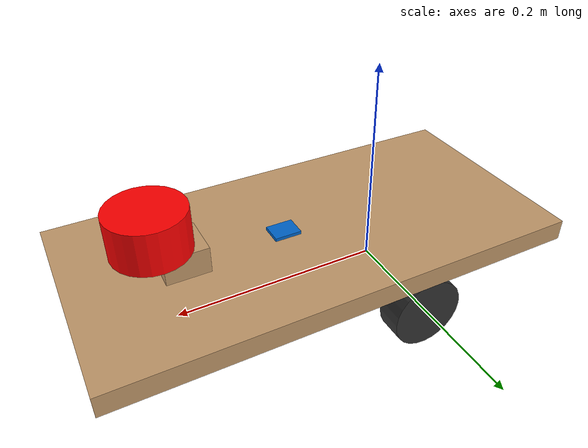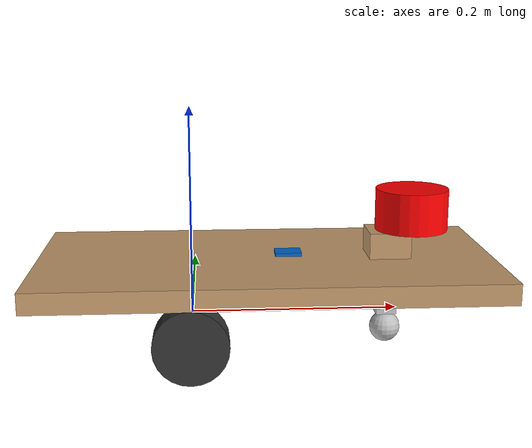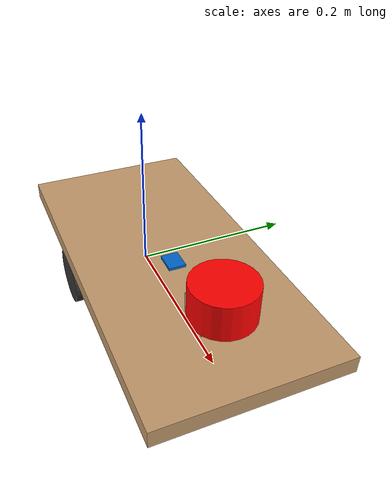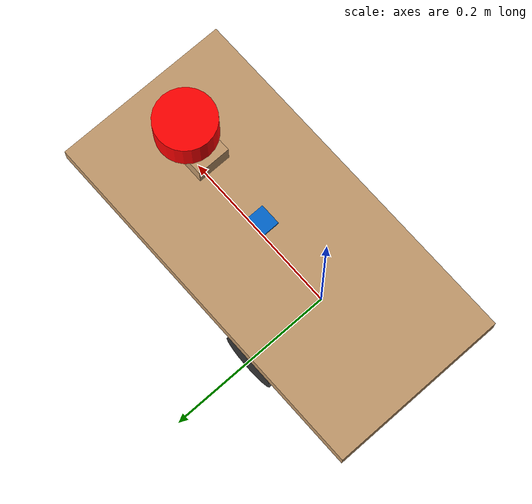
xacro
<?xml version="1.0"?>
<robot xmlns:xacro="http://www.ros.org/wiki/xacro" name="robot">

  <!-- Real hardware robot URDF — no Gazebo plugins -->

  <xacro:include filename="robot_core.xacro" />
  <xacro:include filename="lidar_hardware.xacro" />
  <xacro:include filename="imu_hardware.xacro" />
  <!-- Camera not used for navigation on real hardware (optional) -->

</robot>

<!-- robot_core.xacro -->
<robot xmlns:xacro="http://www.ros.org/wiki/xacro" >

    <xacro:include filename="inertial_macros.xacro" />

    <!-- ==================== ROBOT PARAMETERS ==================== -->

    <!-- ==================== MATERIALS (RViz colors) ==================== -->
    <material name="white">
        <color rgba="1 1 1 1"/>
    </material>
    <material name="orange">
        <color rgba="1 0.3 0 1"/>
    </material>
    <material name="blue">
        <color rgba="0.1 0.1 0.8 1"/>
    </material>
    <material name="black">
        <color rgba="0.05 0.05 0.05 1"/>
    </material>
    <material name="dark_grey">
        <color rgba="0.2 0.2 0.2 1"/>
    </material>
    <material name="silver">
        <color rgba="0.75 0.75 0.75 1"/>
    </material>
    <material name="red">
        <color rgba="1 0 0 1"/>
    </material>
    <material name="wood">
        <color rgba="0.76 0.60 0.42 1"/>
    </material>

    <!-- ==================== BASE LINK ==================== -->
    <link name="base_link"> </link>

    <!-- ==================== BASE FOOTPRINT (ground plane) ==================== -->
    <joint name="base_footprint_joint" type="fixed">
        <parent link="base_link"/>
        <child link="base_footprint"/>
        <origin xyz="0 0 -0.0345" rpy="0 0 0"/>
    </joint>
    <link name="base_footprint"> </link>

    <!-- ==================== CHASSIS ==================== -->
    <joint name="chassis_joint" type="fixed">
        <parent link="base_link"/>
        <child link="chassis"/>
        <origin xyz="-0.147 0 0" rpy="0 0 0"/>
    </joint>

    <link name="chassis">
        <visual>
            <origin xyz="0.2185 0 0.045" rpy="0 0 0"/>
            <geometry>
                <box size="0.437 0.212 0.020"/>
            </geometry>
            <material name="wood"/>
        </visual>
        <collision>
            <origin xyz="0.2185 0 0.045" rpy="0 0 0"/>
            <geometry>
                <box size="0.437 0.212 0.020"/>
            </geometry>
        </collision>
        <xacro:inertial_box mass="2.0" x="0.437" y="0.212" z="0.020">
            <origin xyz="0.2185 0 0.045" rpy="0 0 0"/>
        </xacro:inertial_box>
    </link>

    <!-- ==================== WHEEL SUPPORT POSTS ==================== -->
    <!-- Vertical wood support connecting chassis to motor/axle mount area -->
    <!-- Left support post -->
    <joint name="left_support_joint" type="fixed">
        <parent link="chassis"/>
        <child link="left_support"/>
        <origin xyz="0.147 0.07 0" rpy="0 0 0"/>
    </joint>
    <link name="left_support">
        <visual>
            <origin xyz="0 0 0.0175" rpy="0 0 0"/>
            <geometry>
                <box size="0.04 0.02 0.035"/>
            </geometry>
            <material name="wood"/>
        </visual>
    </link>

    <!-- Right support post -->
    <joint name="right_support_joint" type="fixed">
        <parent link="chassis"/>
        <child link="right_support"/>
        <origin xyz="0.147 -0.07 0" rpy="0 0 0"/>
    </joint>
    <link name="right_support">
        <visual>
            <origin xyz="0 0 0.0175" rpy="0 0 0"/>
            <geometry>
                <box size="0.04 0.02 0.035"/>
            </geometry>
            <material name="wood"/>
        </visual>
    </link>

    <!-- ==================== MOTOR HOUSINGS ==================== -->
    <!-- Left motor -->
    <joint name="left_motor_joint" type="fixed">
        <parent link="chassis"/>
        <child link="left_motor"/>
        <origin xyz="0.147 0.065 0" rpy="0 0 0"/>
    </joint>
    <link name="left_motor">
        <visual>
            <origin xyz="0 0 0" rpy="${pi/2} 0 0"/>
            <geometry>
                <cylinder radius="0.014" length="0.040"/>
            </geometry>
            <material name="dark_grey"/>
        </visual>
    </link>

    <!-- Right motor -->
    <joint name="right_motor_joint" type="fixed">
        <parent link="chassis"/>
        <child link="right_motor"/>
        <origin xyz="0.147 -0.065 0" rpy="0 0 0"/>
    </joint>
    <link name="right_motor">
        <visual>
            <origin xyz="0 0 0" rpy="${pi/2} 0 0"/>
            <geometry>
                <cylinder radius="0.014" length="0.040"/>
            </geometry>
            <material name="dark_grey"/>
        </visual>
    </link>

    <!-- ==================== LEFT WHEEL ==================== -->
    <!--
      Center-to-center wheel separation: 0.181 m
      Each wheel at y = ±0.0905 m from base_link
      Wheel: radius 0.0345m, width 0.026m
    -->
    <joint name="left_wheel_joint" type="continuous">
        <parent link="base_link"/>
        <child link="left_wheel"/>
        <origin xyz="0 0.0905 0" rpy="-${pi/2} 0 0"/>
        <axis xyz="0 0 1"/>
    </joint>
    <link name="left_wheel">
        <visual>
            <origin xyz="0 0 0" rpy="0 0 0"/>
            <geometry>
                <cylinder radius="0.0345" length="0.026"/>
            </geometry>
            <material name="dark_grey"/>
        </visual>
        <collision>
            <origin xyz="0 0 0" rpy="0 0 0"/>
            <geometry>
                <sphere radius="0.0345"/>
            </geometry>
        </collision>
        <xacro:inertial_cylinder mass="0.1" length="0.026" radius="0.0345">
            <origin xyz="0 0 0" rpy="0 0 0"/>
        </xacro:inertial_cylinder>
    </link>

    <!-- ==================== RIGHT WHEEL ==================== -->
    <joint name="right_wheel_joint" type="continuous">
        <parent link="base_link"/>
        <child link="right_wheel"/>
        <origin xyz="0 -0.0905 0" rpy="${pi/2} 0 0"/>
        <axis xyz="0 0 -1"/>
    </joint>
    <link name="right_wheel">
        <visual>
            <origin xyz="0 0 0" rpy="0 0 0"/>
            <geometry>
                <cylinder radius="0.0345" length="0.026"/>
            </geometry>
            <material name="dark_grey"/>
        </visual>
        <collision>
            <origin xyz="0 0 0" rpy="0 0 0"/>
            <geometry>
                <sphere radius="0.0345"/>
            </geometry>
        </collision>
        <xacro:inertial_cylinder mass="0.1" length="0.026" radius="0.0345">
            <origin xyz="0 0 0" rpy="0 0 0"/>
        </xacro:inertial_cylinder>
    </link>

    <!-- ==================== CASTER MOUNT BRACKET ==================== -->
    <joint name="caster_mount_joint" type="fixed">
        <parent link="chassis"/>
        <child link="caster_mount"/>
        <origin xyz="0.337 0 0.015" rpy="0 0 0"/>
    </joint>
    <link name="caster_mount">
        <visual>
            <origin xyz="0 0 0" rpy="0 0 0"/>
            <geometry>
                <box size="0.020 0.015 0.040"/>
            </geometry>
            <material name="silver"/>
        </visual>
    </link>

    <!-- ==================== CASTER WHEEL ==================== -->
    <!--
      Passive front caster, 190 mm forward of drive axle.
      Relative to chassis link: x = 0.190 + 0.147 = 0.337 m
      Small sphere (radius 0.015m) at z = -0.0195 so it contacts ground
    -->
    <joint name="caster_wheel_joint" type="fixed">
        <parent link="chassis"/>
        <child link="caster_wheel"/>
        <origin xyz="0.337 0 -0.0195"/>
    </joint>
    <link name="caster_wheel">
        <visual>
            <geometry>
                <sphere radius="0.015"/>
            </geometry>
            <material name="silver"/>
        </visual>
        <collision>
            <geometry>
                <sphere radius="0.015"/>
            </geometry>
        </collision>
        <xacro:inertial_sphere mass="0.05" radius="0.015">
            <origin xyz="0 0 0" rpy="0 0 0"/>
        </xacro:inertial_sphere>
    </link>

    <!-- ==================== LIDAR RISER POST ==================== -->
    <joint name="lidar_riser_joint" type="fixed">
        <parent link="chassis"/>
        <child link="lidar_riser"/>
        <origin xyz="0.337 0 0.0675" rpy="0 0 0"/>
    </joint>
    <link name="lidar_riser">
        <visual>
            <origin xyz="0 0 0" rpy="0 0 0"/>
            <geometry>
                <box size="0.040 0.040 0.025"/>
            </geometry>
            <material name="wood"/>
        </visual>
    </link>

</robot>

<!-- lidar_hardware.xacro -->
<robot xmlns:xacro="http://www.ros.org/wiki/xacro">

  <joint name="laser_joint" type="fixed">
    <parent link="chassis"/>
    <child link="laser_frame"/>
    <origin xyz="0.36 0 0.10" rpy="0 0 ${pi}"/>
  </joint>

  <link name="laser_frame">
    <visual>
      <geometry>
        <cylinder length="0.04" radius="0.035"/>
      </geometry>
      <material name="red">
        <color rgba="1 0 0 1"/>
      </material>
    </visual>
    <collision>
      <geometry>
        <cylinder length="0.04" radius="0.035"/>
      </geometry>
    </collision>
    <xacro:inertial_cylinder mass="0.15" length="0.04" radius="0.035">
      <origin xyz="0 0 0" rpy="0 0 0"/>
    </xacro:inertial_cylinder>
  </link>

  <!-- No Gazebo sensor plugin — real RPLidar C1 provides /scan topic -->

</robot>

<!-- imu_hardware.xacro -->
<robot xmlns:xacro="http://www.ros.org/wiki/xacro">

  <!-- IMU mounting joint — fixed to chassis -->
  <joint name="imu_joint" type="fixed">
    <parent link="chassis"/>
    <child link="imu_link"/>
    <origin xyz="0.24 0 0.058" rpy="0 0 0"/>
  </joint>

  <link name="imu_link">
    <visual>
      <geometry>
        <!-- Adafruit BNO085 breakout board approximation -->
        <box size="0.0254 0.0203 0.0032"/>
      </geometry>
      <material name="imu_blue">
        <color rgba="0.0 0.4 0.8 1.0"/>
      </material>
    </visual>
    <collision>
      <geometry>
        <box size="0.0254 0.0203 0.0032"/>
      </geometry>
    </collision>
    <xacro:inertial_box mass="0.003" x="0.0254" y="0.0203" z="0.0032">
      <origin xyz="0 0 0" rpy="0 0 0"/>
    </xacro:inertial_box>
  </link>

</robot>
